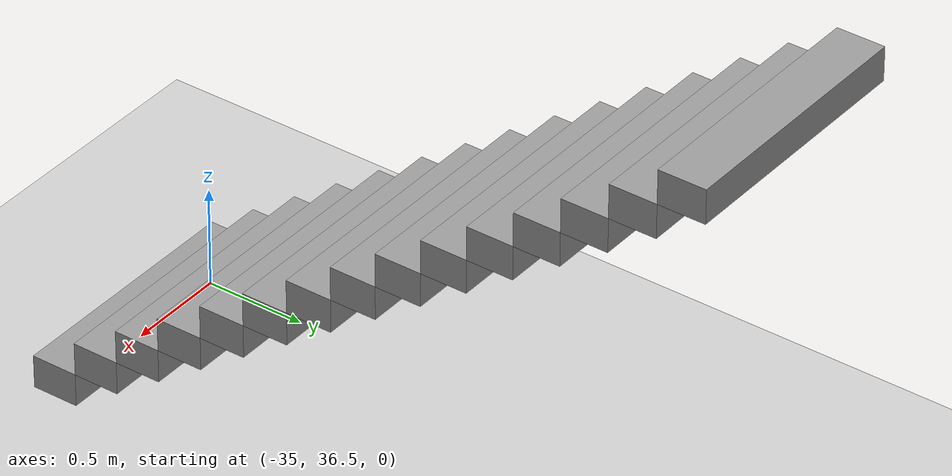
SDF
<sdf version="1.7">
 <world name="default">
  <model name="ground_plane">
   <static>1</static>
   <link name="link">
    <collision name="collision">
     <geometry><plane><normal>0 0 1</normal><size>100 100</size></plane></geometry>
     <surface><friction><ode><mu>100</mu><mu2>50</mu2></ode></friction></surface>
    </collision>
    <visual name="visual">
     <cast_shadows>0</cast_shadows>
     <geometry><plane><normal>0 0 1</normal><size>100 100</size></plane></geometry>
     <material>
      <script><uri>file://media/materials/scripts/gazebo.material</uri><name>Gazebo/Grey</name></script>
     </material>
    </visual>
   </link>
  </model>
  <model name="Anselm_Turmeda">
   <pose>-32.7988 -2.37459 0 0 -0 0</pose>
   <link name="Stairs_13">
    <visual name="Stairs_13_Visual_0">
     <pose>-1.76297 38.8526 0.083333 0 -0 -3.14159</pose>
     <geometry><box><size>1.25659 0.233333 0.166667</size></box></geometry>
     <material>
      <script><uri>file://media/materials/scripts/gazebo.material</uri><name>Gazebo/Grey</name></script>
      <ambient>1 1 1 1</ambient>
     </material>
     <meta><layer>0</layer></meta>
    </visual>
    <collision name="Stairs_13_Collision_0">
     <geometry><box><size>1.25659 0.233333 0.166667</size></box></geometry>
     <pose>-1.76297 38.8526 0.083333 0 -0 -3.14159</pose>
    </collision>
    <visual name="Stairs_13_Visual_1">
     <pose>-1.76297 39.086 0.25 0 -0 -3.14159</pose>
     <geometry><box><size>1.25659 0.233333 0.166667</size></box></geometry>
     <material>
      <script><uri>file://media/materials/scripts/gazebo.material</uri><name>Gazebo/Grey</name></script>
      <ambient>1 1 1 1</ambient>
     </material>
     <meta><layer>0</layer></meta>
    </visual>
    <collision name="Stairs_13_Collision_1">
     <geometry><box><size>1.25659 0.233333 0.166667</size></box></geometry>
     <pose>-1.76297 39.086 0.25 0 -0 -3.14159</pose>
    </collision>
    <visual name="Stairs_13_Visual_2">
     <pose>-1.76297 39.3193 0.416667 0 -0 -3.14159</pose>
     <geometry><box><size>1.25659 0.233333 0.166667</size></box></geometry>
     <material>
      <script><uri>file://media/materials/scripts/gazebo.material</uri><name>Gazebo/Grey</name></script>
      <ambient>1 1 1 1</ambient>
     </material>
     <meta><layer>0</layer></meta>
    </visual>
    <collision name="Stairs_13_Collision_2">
     <geometry><box><size>1.25659 0.233333 0.166667</size></box></geometry>
     <pose>-1.76297 39.3193 0.416667 0 -0 -3.14159</pose>
    </collision>
    <visual name="Stairs_13_Visual_3">
     <pose>-1.76297 39.5526 0.583333 0 -0 -3.14159</pose>
     <geometry><box><size>1.25659 0.233333 0.166667</size></box></geometry>
     <material>
      <script><uri>file://media/materials/scripts/gazebo.material</uri><name>Gazebo/Grey</name></script>
      <ambient>1 1 1 1</ambient>
     </material>
     <meta><layer>0</layer></meta>
    </visual>
    <collision name="Stairs_13_Collision_3">
     <geometry><box><size>1.25659 0.233333 0.166667</size></box></geometry>
     <pose>-1.76297 39.5526 0.583333 0 -0 -3.14159</pose>
    </collision>
    <visual name="Stairs_13_Visual_4">
     <pose>-1.76297 39.786 0.75 0 -0 -3.14159</pose>
     <geometry><box><size>1.25659 0.233333 0.166667</size></box></geometry>
     <material>
      <script><uri>file://media/materials/scripts/gazebo.material</uri><name>Gazebo/Grey</name></script>
      <ambient>1 1 1 1</ambient>
     </material>
     <meta><layer>0</layer></meta>
    </visual>
    <collision name="Stairs_13_Collision_4">
     <geometry><box><size>1.25659 0.233333 0.166667</size></box></geometry>
     <pose>-1.76297 39.786 0.75 0 -0 -3.14159</pose>
    </collision>
    <visual name="Stairs_13_Visual_5">
     <pose>-1.76297 40.0193 0.916667 0 -0 -3.14159</pose>
     <geometry><box><size>1.25659 0.233333 0.166667</size></box></geometry>
     <material>
      <script><uri>file://media/materials/scripts/gazebo.material</uri><name>Gazebo/Grey</name></script>
      <ambient>1 1 1 1</ambient>
     </material>
     <meta><layer>0</layer></meta>
    </visual>
    <collision name="Stairs_13_Collision_5">
     <geometry><box><size>1.25659 0.233333 0.166667</size></box></geometry>
     <pose>-1.76297 40.0193 0.916667 0 -0 -3.14159</pose>
    </collision>
    <visual name="Stairs_13_Visual_6">
     <pose>-1.76297 40.2526 1.08333 0 -0 -3.14159</pose>
     <geometry><box><size>1.25659 0.233333 0.166667</size></box></geometry>
     <material>
      <script><uri>file://media/materials/scripts/gazebo.material</uri><name>Gazebo/Grey</name></script>
      <ambient>1 1 1 1</ambient>
     </material>
     <meta><layer>0</layer></meta>
    </visual>
    <collision name="Stairs_13_Collision_6">
     <geometry><box><size>1.25659 0.233333 0.166667</size></box></geometry>
     <pose>-1.76297 40.2526 1.08333 0 -0 -3.14159</pose>
    </collision>
    <visual name="Stairs_13_Visual_7">
     <pose>-1.76297 40.486 1.25 0 -0 -3.14159</pose>
     <geometry><box><size>1.25659 0.233333 0.166667</size></box></geometry>
     <material>
      <script><uri>file://media/materials/scripts/gazebo.material</uri><name>Gazebo/Grey</name></script>
      <ambient>1 1 1 1</ambient>
     </material>
     <meta><layer>0</layer></meta>
    </visual>
    <collision name="Stairs_13_Collision_7">
     <geometry><box><size>1.25659 0.233333 0.166667</size></box></geometry>
     <pose>-1.76297 40.486 1.25 0 -0 -3.14159</pose>
    </collision>
    <visual name="Stairs_13_Visual_8">
     <pose>-1.76297 40.7193 1.41667 0 -0 -3.14159</pose>
     <geometry><box><size>1.25659 0.233333 0.166667</size></box></geometry>
     <material>
      <script><uri>file://media/materials/scripts/gazebo.material</uri><name>Gazebo/Grey</name></script>
      <ambient>1 1 1 1</ambient>
     </material>
     <meta><layer>0</layer></meta>
    </visual>
    <collision name="Stairs_13_Collision_8">
     <geometry><box><size>1.25659 0.233333 0.166667</size></box></geometry>
     <pose>-1.76297 40.7193 1.41667 0 -0 -3.14159</pose>
    </collision>
    <visual name="Stairs_13_Visual_9">
     <pose>-1.76297 40.9526 1.58333 0 -0 -3.14159</pose>
     <geometry><box><size>1.25659 0.233333 0.166667</size></box></geometry>
     <material>
      <script><uri>file://media/materials/scripts/gazebo.material</uri><name>Gazebo/Grey</name></script>
      <ambient>1 1 1 1</ambient>
     </material>
     <meta><layer>0</layer></meta>
    </visual>
    <collision name="Stairs_13_Collision_9">
     <geometry><box><size>1.25659 0.233333 0.166667</size></box></geometry>
     <pose>-1.76297 40.9526 1.58333 0 -0 -3.14159</pose>
    </collision>
    <visual name="Stairs_13_Visual_10">
     <pose>-1.76297 41.186 1.75 0 -0 -3.14159</pose>
     <geometry><box><size>1.25659 0.233333 0.166667</size></box></geometry>
     <material>
      <script><uri>file://media/materials/scripts/gazebo.material</uri><name>Gazebo/Grey</name></script>
      <ambient>1 1 1 1</ambient>
     </material>
     <meta><layer>0</layer></meta>
    </visual>
    <collision name="Stairs_13_Collision_10">
     <geometry><box><size>1.25659 0.233333 0.166667</size></box></geometry>
     <pose>-1.76297 41.186 1.75 0 -0 -3.14159</pose>
    </collision>
    <visual name="Stairs_13_Visual_11">
     <pose>-1.76297 41.4193 1.91667 0 -0 -3.14159</pose>
     <geometry><box><size>1.25659 0.233333 0.166667</size></box></geometry>
     <material>
      <script><uri>file://media/materials/scripts/gazebo.material</uri><name>Gazebo/Grey</name></script>
      <ambient>1 1 1 1</ambient>
     </material>
     <meta><layer>0</layer></meta>
    </visual>
    <collision name="Stairs_13_Collision_11">
     <geometry><box><size>1.25659 0.233333 0.166667</size></box></geometry>
     <pose>-1.76297 41.4193 1.91667 0 -0 -3.14159</pose>
    </collision>
    <visual name="Stairs_13_Visual_12">
     <pose>-1.76297 41.6526 2.08333 0 -0 -3.14159</pose>
     <geometry><box><size>1.25659 0.233333 0.166667</size></box></geometry>
     <material>
      <script><uri>file://media/materials/scripts/gazebo.material</uri><name>Gazebo/Grey</name></script>
      <ambient>1 1 1 1</ambient>
     </material>
     <meta><layer>0</layer></meta>
    </visual>
    <collision name="Stairs_13_Collision_12">
     <geometry><box><size>1.25659 0.233333 0.166667</size></box></geometry>
     <pose>-1.76297 41.6526 2.08333 0 -0 -3.14159</pose>
    </collision>
    <visual name="Stairs_13_Visual_13">
     <pose>-1.76297 41.886 2.25 0 -0 -3.14159</pose>
     <geometry><box><size>1.25659 0.233333 0.166667</size></box></geometry>
     <material>
      <script><uri>file://media/materials/scripts/gazebo.material</uri><name>Gazebo/Grey</name></script>
      <ambient>1 1 1 1</ambient>
     </material>
     <meta><layer>0</layer></meta>
    </visual>
    <collision name="Stairs_13_Collision_13">
     <geometry><box><size>1.25659 0.233333 0.166667</size></box></geometry>
     <pose>-1.76297 41.886 2.25 0 -0 -3.14159</pose>
    </collision>
    <visual name="Stairs_13_Visual_14">
     <pose>-1.76297 42.1193 2.41667 0 -0 -3.14159</pose>
     <geometry><box><size>1.25659 0.233333 0.166667</size></box></geometry>
     <material>
      <script><uri>file://media/materials/scripts/gazebo.material</uri><name>Gazebo/Grey</name></script>
      <ambient>1 1 1 1</ambient>
     </material>
     <meta><layer>0</layer></meta>
    </visual>
    <collision name="Stairs_13_Collision_14">
     <geometry><box><size>1.25659 0.233333 0.166667</size></box></geometry>
     <pose>-1.76297 42.1193 2.41667 0 -0 -3.14159</pose>
    </collision>
   </link>
   <static>1</static>
  </model>
 </world>
</sdf>
